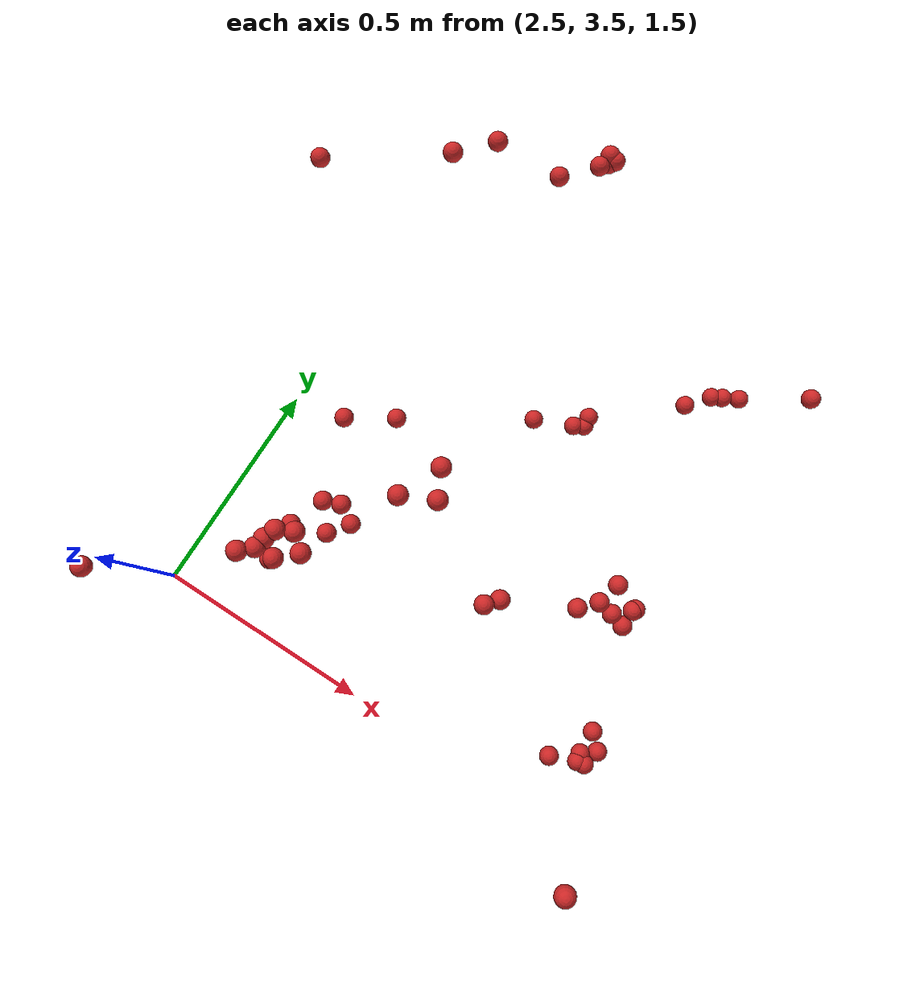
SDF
<sdf version="1.4">
 <model name="fruit_population">
  <static>true</static>
  <link name="fruit_15">
   <pose>2.684700486082706 3.7460056384429303 1.62779059801938 0 0 0</pose>
   <collision name="fruit_collision_15"><geometry><sphere><radius>0.022</radius></sphere></geometry></collision>
   <visual name="visual">
    <geometry><sphere><radius>0.022</radius></sphere></geometry>
    <material><script><name>Gazebo/Red</name></script></material>
   </visual>
   <inertial>
    <mass>0.05</mass>
    <inertia>
     <ixx>9.679999999999999e-06</ixx>
     <ixy>0.0</ixy>
     <ixz>0.0</ixz>
     <iyy>9.679999999999999e-06</iyy>
     <iyz>0.0</iyz>
     <izz>9.679999999999999e-06</izz>
    </inertia>
   </inertial>
   <sensor name="fruit_contact_15" type="contact">
    <plugin name="contact_plugin_15" filename="libcontact_plugin.so"/>
    <contact><collision>fruit_collision_15</collision><topic>fruit_contact_topic_15</topic></contact>
   </sensor>
  </link>
  <link name="fruit_21">
   <pose>2.6426882024266636 4.012076981934623 1.5983981191072676 0 0 0</pose>
   <collision name="fruit_collision_21"><geometry><sphere><radius>0.022</radius></sphere></geometry></collision>
   <visual name="visual">
    <geometry><sphere><radius>0.022</radius></sphere></geometry>
    <material><script><name>Gazebo/Red</name></script></material>
   </visual>
   <inertial>
    <mass>0.05</mass>
    <inertia>
     <ixx>9.679999999999999e-06</ixx>
     <ixy>0.0</ixy>
     <ixz>0.0</ixz>
     <iyy>9.679999999999999e-06</iyy>
     <iyz>0.0</iyz>
     <izz>9.679999999999999e-06</izz>
    </inertia>
   </inertial>
   <sensor name="fruit_contact_21" type="contact">
    <plugin name="contact_plugin_21" filename="libcontact_plugin.so"/>
    <contact><collision>fruit_collision_21</collision><topic>fruit_contact_topic_21</topic></contact>
   </sensor>
  </link>
  <link name="fruit_43">
   <pose>3.4422763458970818 3.627155309442718 1.5002836933342558 0 0 0</pose>
   <collision name="fruit_collision_43"><geometry><sphere><radius>0.022</radius></sphere></geometry></collision>
   <visual name="visual">
    <geometry><sphere><radius>0.022</radius></sphere></geometry>
    <material><script><name>Gazebo/Red</name></script></material>
   </visual>
   <inertial>
    <mass>0.05</mass>
    <inertia>
     <ixx>9.679999999999999e-06</ixx>
     <ixy>0.0</ixy>
     <ixz>0.0</ixz>
     <iyy>9.679999999999999e-06</iyy>
     <iyz>0.0</iyz>
     <izz>9.679999999999999e-06</izz>
    </inertia>
   </inertial>
   <sensor name="fruit_contact_43" type="contact">
    <plugin name="contact_plugin_43" filename="libcontact_plugin.so"/>
    <contact><collision>fruit_collision_43</collision><topic>fruit_contact_topic_43</topic></contact>
   </sensor>
  </link>
  <link name="fruit_44">
   <pose>3.3127597535592153 3.930853291404094 1.6302194774062004 0 0 0</pose>
   <collision name="fruit_collision_44"><geometry><sphere><radius>0.022</radius></sphere></geometry></collision>
   <visual name="visual">
    <geometry><sphere><radius>0.022</radius></sphere></geometry>
    <material><script><name>Gazebo/Red</name></script></material>
   </visual>
   <inertial>
    <mass>0.05</mass>
    <inertia>
     <ixx>9.679999999999999e-06</ixx>
     <ixy>0.0</ixy>
     <ixz>0.0</ixz>
     <iyy>9.679999999999999e-06</iyy>
     <iyz>0.0</iyz>
     <izz>9.679999999999999e-06</izz>
    </inertia>
   </inertial>
   <sensor name="fruit_contact_44" type="contact">
    <plugin name="contact_plugin_44" filename="libcontact_plugin.so"/>
    <contact><collision>fruit_collision_44</collision><topic>fruit_contact_topic_44</topic></contact>
   </sensor>
  </link>
  <link name="fruit_47">
   <pose>2.6683056746981966 3.6419394973025425 1.832749809143632 0 0 0</pose>
   <collision name="fruit_collision_47"><geometry><sphere><radius>0.022</radius></sphere></geometry></collision>
   <visual name="visual">
    <geometry><sphere><radius>0.022</radius></sphere></geometry>
    <material><script><name>Gazebo/Red</name></script></material>
   </visual>
   <inertial>
    <mass>0.05</mass>
    <inertia>
     <ixx>9.679999999999999e-06</ixx>
     <ixy>0.0</ixy>
     <ixz>0.0</ixz>
     <iyy>9.679999999999999e-06</iyy>
     <iyz>0.0</iyz>
     <izz>9.679999999999999e-06</izz>
    </inertia>
   </inertial>
   <sensor name="fruit_contact_47" type="contact">
    <plugin name="contact_plugin_47" filename="libcontact_plugin.so"/>
    <contact><collision>fruit_collision_47</collision><topic>fruit_contact_topic_47</topic></contact>
   </sensor>
  </link>
  <link name="fruit_50">
   <pose>3.5105878102218986 4.620496890735398 1.6069139017562128 0 0 0</pose>
   <collision name="fruit_collision_50"><geometry><sphere><radius>0.022</radius></sphere></geometry></collision>
   <visual name="visual">
    <geometry><sphere><radius>0.022</radius></sphere></geometry>
    <material><script><name>Gazebo/Red</name></script></material>
   </visual>
   <inertial>
    <mass>0.05</mass>
    <inertia>
     <ixx>9.679999999999999e-06</ixx>
     <ixy>0.0</ixy>
     <ixz>0.0</ixz>
     <iyy>9.679999999999999e-06</iyy>
     <iyz>0.0</iyz>
     <izz>9.679999999999999e-06</izz>
    </inertia>
   </inertial>
   <sensor name="fruit_contact_50" type="contact">
    <plugin name="contact_plugin_50" filename="libcontact_plugin.so"/>
    <contact><collision>fruit_collision_50</collision><topic>fruit_contact_topic_50</topic></contact>
   </sensor>
  </link>
  <link name="fruit_75">
   <pose>3.2842879284935744 4.4904516196715445 1.4915559141953179 0 0 0</pose>
   <collision name="fruit_collision_75"><geometry><sphere><radius>0.022</radius></sphere></geometry></collision>
   <visual name="visual">
    <geometry><sphere><radius>0.022</radius></sphere></geometry>
    <material><script><name>Gazebo/Red</name></script></material>
   </visual>
   <inertial>
    <mass>0.05</mass>
    <inertia>
     <ixx>9.679999999999999e-06</ixx>
     <ixy>0.0</ixy>
     <ixz>0.0</ixz>
     <iyy>9.679999999999999e-06</iyy>
     <iyz>0.0</iyz>
     <izz>9.679999999999999e-06</izz>
    </inertia>
   </inertial>
   <sensor name="fruit_contact_75" type="contact">
    <plugin name="contact_plugin_75" filename="libcontact_plugin.so"/>
    <contact><collision>fruit_collision_75</collision><topic>fruit_contact_topic_75</topic></contact>
   </sensor>
  </link>
  <link name="fruit_80">
   <pose>3.1386647307013 3.8247371496569156 1.6898906540431777 0 0 0</pose>
   <collision name="fruit_collision_80"><geometry><sphere><radius>0.022</radius></sphere></geometry></collision>
   <visual name="visual">
    <geometry><sphere><radius>0.022</radius></sphere></geometry>
    <material><script><name>Gazebo/Red</name></script></material>
   </visual>
   <inertial>
    <mass>0.05</mass>
    <inertia>
     <ixx>9.679999999999999e-06</ixx>
     <ixy>0.0</ixy>
     <ixz>0.0</ixz>
     <iyy>9.679999999999999e-06</iyy>
     <iyz>0.0</iyz>
     <izz>9.679999999999999e-06</izz>
    </inertia>
   </inertial>
   <sensor name="fruit_contact_80" type="contact">
    <plugin name="contact_plugin_80" filename="libcontact_plugin.so"/>
    <contact><collision>fruit_collision_80</collision><topic>fruit_contact_topic_80</topic></contact>
   </sensor>
  </link>
  <link name="fruit_136">
   <pose>2.7664947405878357 4.716859959303448 1.714235839433986 0 0 0</pose>
   <collision name="fruit_collision_136"><geometry><sphere><radius>0.022</radius></sphere></geometry></collision>
   <visual name="visual">
    <geometry><sphere><radius>0.022</radius></sphere></geometry>
    <material><script><name>Gazebo/Red</name></script></material>
   </visual>
   <inertial>
    <mass>0.05</mass>
    <inertia>
     <ixx>9.679999999999999e-06</ixx>
     <ixy>0.0</ixy>
     <ixz>0.0</ixz>
     <iyy>9.679999999999999e-06</iyy>
     <iyz>0.0</iyz>
     <izz>9.679999999999999e-06</izz>
    </inertia>
   </inertial>
   <sensor name="fruit_contact_136" type="contact">
    <plugin name="contact_plugin_136" filename="libcontact_plugin.so"/>
    <contact><collision>fruit_collision_136</collision><topic>fruit_contact_topic_136</topic></contact>
   </sensor>
  </link>
  <link name="fruit_137">
   <pose>2.5583551137048253 4.602494880934882 1.794303913689672 0 0 0</pose>
   <collision name="fruit_collision_137"><geometry><sphere><radius>0.022</radius></sphere></geometry></collision>
   <visual name="visual">
    <geometry><sphere><radius>0.022</radius></sphere></geometry>
    <material><script><name>Gazebo/Red</name></script></material>
   </visual>
   <inertial>
    <mass>0.05</mass>
    <inertia>
     <ixx>9.679999999999999e-06</ixx>
     <ixy>0.0</ixy>
     <ixz>0.0</ixz>
     <iyy>9.679999999999999e-06</iyy>
     <iyz>0.0</iyz>
     <izz>9.679999999999999e-06</izz>
    </inertia>
   </inertial>
   <sensor name="fruit_contact_137" type="contact">
    <plugin name="contact_plugin_137" filename="libcontact_plugin.so"/>
    <contact><collision>fruit_collision_137</collision><topic>fruit_contact_topic_137</topic></contact>
   </sensor>
  </link>
  <link name="fruit_141">
   <pose>3.0007218334241164 4.262807806177342 1.5055755651497003 0 0 0</pose>
   <collision name="fruit_collision_141"><geometry><sphere><radius>0.022</radius></sphere></geometry></collision>
   <visual name="visual">
    <geometry><sphere><radius>0.022</radius></sphere></geometry>
    <material><script><name>Gazebo/Red</name></script></material>
   </visual>
   <inertial>
    <mass>0.05</mass>
    <inertia>
     <ixx>9.679999999999999e-06</ixx>
     <ixy>0.0</ixy>
     <ixz>0.0</ixz>
     <iyy>9.679999999999999e-06</iyy>
     <iyz>0.0</iyz>
     <izz>9.679999999999999e-06</izz>
    </inertia>
   </inertial>
   <sensor name="fruit_contact_141" type="contact">
    <plugin name="contact_plugin_141" filename="libcontact_plugin.so"/>
    <contact><collision>fruit_collision_141</collision><topic>fruit_contact_topic_141</topic></contact>
   </sensor>
  </link>
  <link name="fruit_166">
   <pose>3.555759468914604 3.4469550946329575 1.8747539516512357 0 0 0</pose>
   <collision name="fruit_collision_166"><geometry><sphere><radius>0.022</radius></sphere></geometry></collision>
   <visual name="visual">
    <geometry><sphere><radius>0.022</radius></sphere></geometry>
    <material><script><name>Gazebo/Red</name></script></material>
   </visual>
   <inertial>
    <mass>0.05</mass>
    <inertia>
     <ixx>9.679999999999999e-06</ixx>
     <ixy>0.0</ixy>
     <ixz>0.0</ixz>
     <iyy>9.679999999999999e-06</iyy>
     <iyz>0.0</iyz>
     <izz>9.679999999999999e-06</izz>
    </inertia>
   </inertial>
   <sensor name="fruit_contact_166" type="contact">
    <plugin name="contact_plugin_166" filename="libcontact_plugin.so"/>
    <contact><collision>fruit_collision_166</collision><topic>fruit_contact_topic_166</topic></contact>
   </sensor>
  </link>
  <link name="fruit_171">
   <pose>2.8784160547381705 3.9081772478142116 1.8449582738218961 0 0 0</pose>
   <collision name="fruit_collision_171"><geometry><sphere><radius>0.022</radius></sphere></geometry></collision>
   <visual name="visual">
    <geometry><sphere><radius>0.022</radius></sphere></geometry>
    <material><script><name>Gazebo/Red</name></script></material>
   </visual>
   <inertial>
    <mass>0.05</mass>
    <inertia>
     <ixx>9.679999999999999e-06</ixx>
     <ixy>0.0</ixy>
     <ixz>0.0</ixz>
     <iyy>9.679999999999999e-06</iyy>
     <iyz>0.0</iyz>
     <izz>9.679999999999999e-06</izz>
    </inertia>
   </inertial>
   <sensor name="fruit_contact_171" type="contact">
    <plugin name="contact_plugin_171" filename="libcontact_plugin.so"/>
    <contact><collision>fruit_collision_171</collision><topic>fruit_contact_topic_171</topic></contact>
   </sensor>
  </link>
  <link name="fruit_181">
   <pose>2.7422370828820224 4.076666960688857 1.588921861759868 0 0 0</pose>
   <collision name="fruit_collision_181"><geometry><sphere><radius>0.022</radius></sphere></geometry></collision>
   <visual name="visual">
    <geometry><sphere><radius>0.022</radius></sphere></geometry>
    <material><script><name>Gazebo/Red</name></script></material>
   </visual>
   <inertial>
    <mass>0.05</mass>
    <inertia>
     <ixx>9.679999999999999e-06</ixx>
     <ixy>0.0</ixy>
     <ixz>0.0</ixz>
     <iyy>9.679999999999999e-06</iyy>
     <iyz>0.0</iyz>
     <izz>9.679999999999999e-06</izz>
    </inertia>
   </inertial>
   <sensor name="fruit_contact_181" type="contact">
    <plugin name="contact_plugin_181" filename="libcontact_plugin.so"/>
    <contact><collision>fruit_collision_181</collision><topic>fruit_contact_topic_181</topic></contact>
   </sensor>
  </link>
  <link name="fruit_199">
   <pose>3.108699302939429 4.317048655893899 1.4901322961685157 0 0 0</pose>
   <collision name="fruit_collision_199"><geometry><sphere><radius>0.022</radius></sphere></geometry></collision>
   <visual name="visual">
    <geometry><sphere><radius>0.022</radius></sphere></geometry>
    <material><script><name>Gazebo/Red</name></script></material>
   </visual>
   <inertial>
    <mass>0.05</mass>
    <inertia>
     <ixx>9.679999999999999e-06</ixx>
     <ixy>0.0</ixy>
     <ixz>0.0</ixz>
     <iyy>9.679999999999999e-06</iyy>
     <iyz>0.0</iyz>
     <izz>9.679999999999999e-06</izz>
    </inertia>
   </inertial>
   <sensor name="fruit_contact_199" type="contact">
    <plugin name="contact_plugin_199" filename="libcontact_plugin.so"/>
    <contact><collision>fruit_collision_199</collision><topic>fruit_contact_topic_199</topic></contact>
   </sensor>
  </link>
  <link name="fruit_204">
   <pose>2.850888760159417 4.823444945213385 1.6997783463972473 0 0 0</pose>
   <collision name="fruit_collision_204"><geometry><sphere><radius>0.022</radius></sphere></geometry></collision>
   <visual name="visual">
    <geometry><sphere><radius>0.022</radius></sphere></geometry>
    <material><script><name>Gazebo/Red</name></script></material>
   </visual>
   <inertial>
    <mass>0.05</mass>
    <inertia>
     <ixx>9.679999999999999e-06</ixx>
     <ixy>0.0</ixy>
     <ixz>0.0</ixz>
     <iyy>9.679999999999999e-06</iyy>
     <iyz>0.0</iyz>
     <izz>9.679999999999999e-06</izz>
    </inertia>
   </inertial>
   <sensor name="fruit_contact_204" type="contact">
    <plugin name="contact_plugin_204" filename="libcontact_plugin.so"/>
    <contact><collision>fruit_collision_204</collision><topic>fruit_contact_topic_204</topic></contact>
   </sensor>
  </link>
  <link name="fruit_248">
   <pose>2.4208774943743827 3.4470377214882517 1.8153905746440862 0 0 0</pose>
   <collision name="fruit_collision_248"><geometry><sphere><radius>0.022</radius></sphere></geometry></collision>
   <visual name="visual">
    <geometry><sphere><radius>0.022</radius></sphere></geometry>
    <material><script><name>Gazebo/Red</name></script></material>
   </visual>
   <inertial>
    <mass>0.05</mass>
    <inertia>
     <ixx>9.679999999999999e-06</ixx>
     <ixy>0.0</ixy>
     <ixz>0.0</ixz>
     <iyy>9.679999999999999e-06</iyy>
     <iyz>0.0</iyz>
     <izz>9.679999999999999e-06</izz>
    </inertia>
   </inertial>
   <sensor name="fruit_contact_248" type="contact">
    <plugin name="contact_plugin_248" filename="libcontact_plugin.so"/>
    <contact><collision>fruit_collision_248</collision><topic>fruit_contact_topic_248</topic></contact>
   </sensor>
  </link>
  <link name="fruit_261">
   <pose>3.531611880714284 3.6931982443342632 1.4831939067409312 0 0 0</pose>
   <collision name="fruit_collision_261"><geometry><sphere><radius>0.022</radius></sphere></geometry></collision>
   <visual name="visual">
    <geometry><sphere><radius>0.022</radius></sphere></geometry>
    <material><script><name>Gazebo/Red</name></script></material>
   </visual>
   <inertial>
    <mass>0.05</mass>
    <inertia>
     <ixx>9.679999999999999e-06</ixx>
     <ixy>0.0</ixy>
     <ixz>0.0</ixz>
     <iyy>9.679999999999999e-06</iyy>
     <iyz>0.0</iyz>
     <izz>9.679999999999999e-06</izz>
    </inertia>
   </inertial>
   <sensor name="fruit_contact_261" type="contact">
    <plugin name="contact_plugin_261" filename="libcontact_plugin.so"/>
    <contact><collision>fruit_collision_261</collision><topic>fruit_contact_topic_261</topic></contact>
   </sensor>
  </link>
  <link name="fruit_281">
   <pose>3.327355619915623 4.543613167165196 1.4844218999214036 0 0 0</pose>
   <collision name="fruit_collision_281"><geometry><sphere><radius>0.022</radius></sphere></geometry></collision>
   <visual name="visual">
    <geometry><sphere><radius>0.022</radius></sphere></geometry>
    <material><script><name>Gazebo/Red</name></script></material>
   </visual>
   <inertial>
    <mass>0.05</mass>
    <inertia>
     <ixx>9.679999999999999e-06</ixx>
     <ixy>0.0</ixy>
     <ixz>0.0</ixz>
     <iyy>9.679999999999999e-06</iyy>
     <iyz>0.0</iyz>
     <izz>9.679999999999999e-06</izz>
    </inertia>
   </inertial>
   <sensor name="fruit_contact_281" type="contact">
    <plugin name="contact_plugin_281" filename="libcontact_plugin.so"/>
    <contact><collision>fruit_collision_281</collision><topic>fruit_contact_topic_281</topic></contact>
   </sensor>
  </link>
  <link name="fruit_289">
   <pose>2.7070709323792452 3.717952881031565 1.8261554194883682 0 0 0</pose>
   <collision name="fruit_collision_289"><geometry><sphere><radius>0.022</radius></sphere></geometry></collision>
   <visual name="visual">
    <geometry><sphere><radius>0.022</radius></sphere></geometry>
    <material><script><name>Gazebo/Red</name></script></material>
   </visual>
   <inertial>
    <mass>0.05</mass>
    <inertia>
     <ixx>9.679999999999999e-06</ixx>
     <ixy>0.0</ixy>
     <ixz>0.0</ixz>
     <iyy>9.679999999999999e-06</iyy>
     <iyz>0.0</iyz>
     <izz>9.679999999999999e-06</izz>
    </inertia>
   </inertial>
   <sensor name="fruit_contact_289" type="contact">
    <plugin name="contact_plugin_289" filename="libcontact_plugin.so"/>
    <contact><collision>fruit_collision_289</collision><topic>fruit_contact_topic_289</topic></contact>
   </sensor>
  </link>
  <link name="fruit_296">
   <pose>2.7517379172723704 3.842443297633261 1.616795114210433 0 0 0</pose>
   <collision name="fruit_collision_296"><geometry><sphere><radius>0.022</radius></sphere></geometry></collision>
   <visual name="visual">
    <geometry><sphere><radius>0.022</radius></sphere></geometry>
    <material><script><name>Gazebo/Red</name></script></material>
   </visual>
   <inertial>
    <mass>0.05</mass>
    <inertia>
     <ixx>9.679999999999999e-06</ixx>
     <ixy>0.0</ixy>
     <ixz>0.0</ixz>
     <iyy>9.679999999999999e-06</iyy>
     <iyz>0.0</iyz>
     <izz>9.679999999999999e-06</izz>
    </inertia>
   </inertial>
   <sensor name="fruit_contact_296" type="contact">
    <plugin name="contact_plugin_296" filename="libcontact_plugin.so"/>
    <contact><collision>fruit_collision_296</collision><topic>fruit_contact_topic_296</topic></contact>
   </sensor>
  </link>
  <link name="fruit_326">
   <pose>2.2985711231989066 4.458415930150559 1.7320172107417309 0 0 0</pose>
   <collision name="fruit_collision_326"><geometry><sphere><radius>0.022</radius></sphere></geometry></collision>
   <visual name="visual">
    <geometry><sphere><radius>0.022</radius></sphere></geometry>
    <material><script><name>Gazebo/Red</name></script></material>
   </visual>
   <inertial>
    <mass>0.05</mass>
    <inertia>
     <ixx>9.679999999999999e-06</ixx>
     <ixy>0.0</ixy>
     <ixz>0.0</ixz>
     <iyy>9.679999999999999e-06</iyy>
     <iyz>0.0</iyz>
     <izz>9.679999999999999e-06</izz>
    </inertia>
   </inertial>
   <sensor name="fruit_contact_326" type="contact">
    <plugin name="contact_plugin_326" filename="libcontact_plugin.so"/>
    <contact><collision>fruit_collision_326</collision><topic>fruit_contact_topic_326</topic></contact>
   </sensor>
  </link>
  <link name="fruit_357">
   <pose>2.7763109870408877 3.7067320593816464 1.8218846331652505 0 0 0</pose>
   <collision name="fruit_collision_357"><geometry><sphere><radius>0.022</radius></sphere></geometry></collision>
   <visual name="visual">
    <geometry><sphere><radius>0.022</radius></sphere></geometry>
    <material><script><name>Gazebo/Red</name></script></material>
   </visual>
   <inertial>
    <mass>0.05</mass>
    <inertia>
     <ixx>9.679999999999999e-06</ixx>
     <ixy>0.0</ixy>
     <ixz>0.0</ixz>
     <iyy>9.679999999999999e-06</iyy>
     <iyz>0.0</iyz>
     <izz>9.679999999999999e-06</izz>
    </inertia>
   </inertial>
   <sensor name="fruit_contact_357" type="contact">
    <plugin name="contact_plugin_357" filename="libcontact_plugin.so"/>
    <contact><collision>fruit_collision_357</collision><topic>fruit_contact_topic_357</topic></contact>
   </sensor>
  </link>
  <link name="fruit_362">
   <pose>3.500806279017428 3.669254007785413 1.4835565142099751 0 0 0</pose>
   <collision name="fruit_collision_362"><geometry><sphere><radius>0.022</radius></sphere></geometry></collision>
   <visual name="visual">
    <geometry><sphere><radius>0.022</radius></sphere></geometry>
    <material><script><name>Gazebo/Red</name></script></material>
   </visual>
   <inertial>
    <mass>0.05</mass>
    <inertia>
     <ixx>9.679999999999999e-06</ixx>
     <ixy>0.0</ixy>
     <ixz>0.0</ixz>
     <iyy>9.679999999999999e-06</iyy>
     <iyz>0.0</iyz>
     <izz>9.679999999999999e-06</izz>
    </inertia>
   </inertial>
   <sensor name="fruit_contact_362" type="contact">
    <plugin name="contact_plugin_362" filename="libcontact_plugin.so"/>
    <contact><collision>fruit_collision_362</collision><topic>fruit_contact_topic_362</topic></contact>
   </sensor>
  </link>
  <link name="fruit_381">
   <pose>3.383832134640436 3.9624654954433374 1.613573511229704 0 0 0</pose>
   <collision name="fruit_collision_381"><geometry><sphere><radius>0.022</radius></sphere></geometry></collision>
   <visual name="visual">
    <geometry><sphere><radius>0.022</radius></sphere></geometry>
    <material><script><name>Gazebo/Red</name></script></material>
   </visual>
   <inertial>
    <mass>0.05</mass>
    <inertia>
     <ixx>9.679999999999999e-06</ixx>
     <ixy>0.0</ixy>
     <ixz>0.0</ixz>
     <iyy>9.679999999999999e-06</iyy>
     <iyz>0.0</iyz>
     <izz>9.679999999999999e-06</izz>
    </inertia>
   </inertial>
   <sensor name="fruit_contact_381" type="contact">
    <plugin name="contact_plugin_381" filename="libcontact_plugin.so"/>
    <contact><collision>fruit_collision_381</collision><topic>fruit_contact_topic_381</topic></contact>
   </sensor>
  </link>
  <link name="fruit_394">
   <pose>2.7345478507946415 3.6685452120276656 1.8183298800271301 0 0 0</pose>
   <collision name="fruit_collision_394"><geometry><sphere><radius>0.022</radius></sphere></geometry></collision>
   <visual name="visual">
    <geometry><sphere><radius>0.022</radius></sphere></geometry>
    <material><script><name>Gazebo/Red</name></script></material>
   </visual>
   <inertial>
    <mass>0.05</mass>
    <inertia>
     <ixx>9.679999999999999e-06</ixx>
     <ixy>0.0</ixy>
     <ixz>0.0</ixz>
     <iyy>9.679999999999999e-06</iyy>
     <iyz>0.0</iyz>
     <izz>9.679999999999999e-06</izz>
    </inertia>
   </inertial>
   <sensor name="fruit_contact_394" type="contact">
    <plugin name="contact_plugin_394" filename="libcontact_plugin.so"/>
    <contact><collision>fruit_collision_394</collision><topic>fruit_contact_topic_394</topic></contact>
   </sensor>
  </link>
  <link name="fruit_405">
   <pose>3.519980939248851 3.6539647077151267 1.4884149667893747 0 0 0</pose>
   <collision name="fruit_collision_405"><geometry><sphere><radius>0.022</radius></sphere></geometry></collision>
   <visual name="visual">
    <geometry><sphere><radius>0.022</radius></sphere></geometry>
    <material><script><name>Gazebo/Red</name></script></material>
   </visual>
   <inertial>
    <mass>0.05</mass>
    <inertia>
     <ixx>9.679999999999999e-06</ixx>
     <ixy>0.0</ixy>
     <ixz>0.0</ixz>
     <iyy>9.679999999999999e-06</iyy>
     <iyz>0.0</iyz>
     <izz>9.679999999999999e-06</izz>
    </inertia>
   </inertial>
   <sensor name="fruit_contact_405" type="contact">
    <plugin name="contact_plugin_405" filename="libcontact_plugin.so"/>
    <contact><collision>fruit_collision_405</collision><topic>fruit_contact_topic_405</topic></contact>
   </sensor>
  </link>
  <link name="fruit_423">
   <pose>3.3474612594133646 3.9686123833212843 1.620557475001109 0 0 0</pose>
   <collision name="fruit_collision_423"><geometry><sphere><radius>0.022</radius></sphere></geometry></collision>
   <visual name="visual">
    <geometry><sphere><radius>0.022</radius></sphere></geometry>
    <material><script><name>Gazebo/Red</name></script></material>
   </visual>
   <inertial>
    <mass>0.05</mass>
    <inertia>
     <ixx>9.679999999999999e-06</ixx>
     <ixy>0.0</ixy>
     <ixz>0.0</ixz>
     <iyy>9.679999999999999e-06</iyy>
     <iyz>0.0</iyz>
     <izz>9.679999999999999e-06</izz>
    </inertia>
   </inertial>
   <sensor name="fruit_contact_423" type="contact">
    <plugin name="contact_plugin_423" filename="libcontact_plugin.so"/>
    <contact><collision>fruit_collision_423</collision><topic>fruit_contact_topic_423</topic></contact>
   </sensor>
  </link>
  <link name="fruit_460">
   <pose>3.3854365691494324 4.575088356234398 1.4853804533541703 0 0 0</pose>
   <collision name="fruit_collision_460"><geometry><sphere><radius>0.022</radius></sphere></geometry></collision>
   <visual name="visual">
    <geometry><sphere><radius>0.022</radius></sphere></geometry>
    <material><script><name>Gazebo/Red</name></script></material>
   </visual>
   <inertial>
    <mass>0.05</mass>
    <inertia>
     <ixx>9.679999999999999e-06</ixx>
     <ixy>0.0</ixy>
     <ixz>0.0</ixz>
     <iyy>9.679999999999999e-06</iyy>
     <iyz>0.0</iyz>
     <izz>9.679999999999999e-06</izz>
    </inertia>
   </inertial>
   <sensor name="fruit_contact_460" type="contact">
    <plugin name="contact_plugin_460" filename="libcontact_plugin.so"/>
    <contact><collision>fruit_collision_460</collision><topic>fruit_contact_topic_460</topic></contact>
   </sensor>
  </link>
  <link name="fruit_492">
   <pose>2.834500342361133 4.826072725139218 1.7057972776000094 0 0 0</pose>
   <collision name="fruit_collision_492"><geometry><sphere><radius>0.022</radius></sphere></geometry></collision>
   <visual name="visual">
    <geometry><sphere><radius>0.022</radius></sphere></geometry>
    <material><script><name>Gazebo/Red</name></script></material>
   </visual>
   <inertial>
    <mass>0.05</mass>
    <inertia>
     <ixx>9.679999999999999e-06</ixx>
     <ixy>0.0</ixy>
     <ixz>0.0</ixz>
     <iyy>9.679999999999999e-06</iyy>
     <iyz>0.0</iyz>
     <izz>9.679999999999999e-06</izz>
    </inertia>
   </inertial>
   <sensor name="fruit_contact_492" type="contact">
    <plugin name="contact_plugin_492" filename="libcontact_plugin.so"/>
    <contact><collision>fruit_collision_492</collision><topic>fruit_contact_topic_492</topic></contact>
   </sensor>
  </link>
  <link name="fruit_495">
   <pose>2.6933447204369574 3.6673655057403423 1.8254606680792147 0 0 0</pose>
   <collision name="fruit_collision_495"><geometry><sphere><radius>0.022</radius></sphere></geometry></collision>
   <visual name="visual">
    <geometry><sphere><radius>0.022</radius></sphere></geometry>
    <material><script><name>Gazebo/Red</name></script></material>
   </visual>
   <inertial>
    <mass>0.05</mass>
    <inertia>
     <ixx>9.679999999999999e-06</ixx>
     <ixy>0.0</ixy>
     <ixz>0.0</ixz>
     <iyy>9.679999999999999e-06</iyy>
     <iyz>0.0</iyz>
     <izz>9.679999999999999e-06</izz>
    </inertia>
   </inertial>
   <sensor name="fruit_contact_495" type="contact">
    <plugin name="contact_plugin_495" filename="libcontact_plugin.so"/>
    <contact><collision>fruit_collision_495</collision><topic>fruit_contact_topic_495</topic></contact>
   </sensor>
  </link>
  <link name="fruit_504">
   <pose>2.7286802775678725 3.665164562456968 1.8116610759817078 0 0 0</pose>
   <collision name="fruit_collision_504"><geometry><sphere><radius>0.022</radius></sphere></geometry></collision>
   <visual name="visual">
    <geometry><sphere><radius>0.022</radius></sphere></geometry>
    <material><script><name>Gazebo/Red</name></script></material>
   </visual>
   <inertial>
    <mass>0.05</mass>
    <inertia>
     <ixx>9.679999999999999e-06</ixx>
     <ixy>0.0</ixy>
     <ixz>0.0</ixz>
     <iyy>9.679999999999999e-06</iyy>
     <iyz>0.0</iyz>
     <izz>9.679999999999999e-06</izz>
    </inertia>
   </inertial>
   <sensor name="fruit_contact_504" type="contact">
    <plugin name="contact_plugin_504" filename="libcontact_plugin.so"/>
    <contact><collision>fruit_collision_504</collision><topic>fruit_contact_topic_504</topic></contact>
   </sensor>
  </link>
  <link name="fruit_509">
   <pose>3.502835169443685 3.6509437722608737 1.4893671657009346 0 0 0</pose>
   <collision name="fruit_collision_509"><geometry><sphere><radius>0.022</radius></sphere></geometry></collision>
   <visual name="visual">
    <geometry><sphere><radius>0.022</radius></sphere></geometry>
    <material><script><name>Gazebo/Red</name></script></material>
   </visual>
   <inertial>
    <mass>0.05</mass>
    <inertia>
     <ixx>9.679999999999999e-06</ixx>
     <ixy>0.0</ixy>
     <ixz>0.0</ixz>
     <iyy>9.679999999999999e-06</iyy>
     <iyz>0.0</iyz>
     <izz>9.679999999999999e-06</izz>
    </inertia>
   </inertial>
   <sensor name="fruit_contact_509" type="contact">
    <plugin name="contact_plugin_509" filename="libcontact_plugin.so"/>
    <contact><collision>fruit_collision_509</collision><topic>fruit_contact_topic_509</topic></contact>
   </sensor>
  </link>
  <link name="fruit_513">
   <pose>2.622056723848383 4.683899897529711 1.7779384289510853 0 0 0</pose>
   <collision name="fruit_collision_513"><geometry><sphere><radius>0.022</radius></sphere></geometry></collision>
   <visual name="visual">
    <geometry><sphere><radius>0.022</radius></sphere></geometry>
    <material><script><name>Gazebo/Red</name></script></material>
   </visual>
   <inertial>
    <mass>0.05</mass>
    <inertia>
     <ixx>9.679999999999999e-06</ixx>
     <ixy>0.0</ixy>
     <ixz>0.0</ixz>
     <iyy>9.679999999999999e-06</iyy>
     <iyz>0.0</iyz>
     <izz>9.679999999999999e-06</izz>
    </inertia>
   </inertial>
   <sensor name="fruit_contact_513" type="contact">
    <plugin name="contact_plugin_513" filename="libcontact_plugin.so"/>
    <contact><collision>fruit_collision_513</collision><topic>fruit_contact_topic_513</topic></contact>
   </sensor>
  </link>
  <link name="fruit_527">
   <pose>2.827959271304852 4.790673174153796 1.706630165649444 0 0 0</pose>
   <collision name="fruit_collision_527"><geometry><sphere><radius>0.022</radius></sphere></geometry></collision>
   <visual name="visual">
    <geometry><sphere><radius>0.022</radius></sphere></geometry>
    <material><script><name>Gazebo/Red</name></script></material>
   </visual>
   <inertial>
    <mass>0.05</mass>
    <inertia>
     <ixx>9.679999999999999e-06</ixx>
     <ixy>0.0</ixy>
     <ixz>0.0</ixz>
     <iyy>9.679999999999999e-06</iyy>
     <iyz>0.0</iyz>
     <izz>9.679999999999999e-06</izz>
    </inertia>
   </inertial>
   <sensor name="fruit_contact_527" type="contact">
    <plugin name="contact_plugin_527" filename="libcontact_plugin.so"/>
    <contact><collision>fruit_collision_527</collision><topic>fruit_contact_topic_527</topic></contact>
   </sensor>
  </link>
  <link name="fruit_529">
   <pose>2.740760675304179 3.7360462783744612 1.8175414826445 0 0 0</pose>
   <collision name="fruit_collision_529"><geometry><sphere><radius>0.022</radius></sphere></geometry></collision>
   <visual name="visual">
    <geometry><sphere><radius>0.022</radius></sphere></geometry>
    <material><script><name>Gazebo/Red</name></script></material>
   </visual>
   <inertial>
    <mass>0.05</mass>
    <inertia>
     <ixx>9.679999999999999e-06</ixx>
     <ixy>0.0</ixy>
     <ixz>0.0</ixz>
     <iyy>9.679999999999999e-06</iyy>
     <iyz>0.0</iyz>
     <izz>9.679999999999999e-06</izz>
    </inertia>
   </inertial>
   <sensor name="fruit_contact_529" type="contact">
    <plugin name="contact_plugin_529" filename="libcontact_plugin.so"/>
    <contact><collision>fruit_collision_529</collision><topic>fruit_contact_topic_529</topic></contact>
   </sensor>
  </link>
  <link name="fruit_532">
   <pose>3.1617226147820157 3.853204337793363 1.6711186854210225 0 0 0</pose>
   <collision name="fruit_collision_532"><geometry><sphere><radius>0.022</radius></sphere></geometry></collision>
   <visual name="visual">
    <geometry><sphere><radius>0.022</radius></sphere></geometry>
    <material><script><name>Gazebo/Red</name></script></material>
   </visual>
   <inertial>
    <mass>0.05</mass>
    <inertia>
     <ixx>9.679999999999999e-06</ixx>
     <ixy>0.0</ixy>
     <ixz>0.0</ixz>
     <iyy>9.679999999999999e-06</iyy>
     <iyz>0.0</iyz>
     <izz>9.679999999999999e-06</izz>
    </inertia>
   </inertial>
   <sensor name="fruit_contact_532" type="contact">
    <plugin name="contact_plugin_532" filename="libcontact_plugin.so"/>
    <contact><collision>fruit_collision_532</collision><topic>fruit_contact_topic_532</topic></contact>
   </sensor>
  </link>
  <link name="fruit_569">
   <pose>2.759883578566501 3.7720176589828287 1.614453881736552 0 0 0</pose>
   <collision name="fruit_collision_569"><geometry><sphere><radius>0.022</radius></sphere></geometry></collision>
   <visual name="visual">
    <geometry><sphere><radius>0.022</radius></sphere></geometry>
    <material><script><name>Gazebo/Red</name></script></material>
   </visual>
   <inertial>
    <mass>0.05</mass>
    <inertia>
     <ixx>9.679999999999999e-06</ixx>
     <ixy>0.0</ixy>
     <ixz>0.0</ixz>
     <iyy>9.679999999999999e-06</iyy>
     <iyz>0.0</iyz>
     <izz>9.679999999999999e-06</izz>
    </inertia>
   </inertial>
   <sensor name="fruit_contact_569" type="contact">
    <plugin name="contact_plugin_569" filename="libcontact_plugin.so"/>
    <contact><collision>fruit_collision_569</collision><topic>fruit_contact_topic_569</topic></contact>
   </sensor>
  </link>
  <link name="fruit_605">
   <pose>3.1069652444505937 4.340220220597751 1.4952595835118823 0 0 0</pose>
   <collision name="fruit_collision_605"><geometry><sphere><radius>0.022</radius></sphere></geometry></collision>
   <visual name="visual">
    <geometry><sphere><radius>0.022</radius></sphere></geometry>
    <material><script><name>Gazebo/Red</name></script></material>
   </visual>
   <inertial>
    <mass>0.05</mass>
    <inertia>
     <ixx>9.679999999999999e-06</ixx>
     <ixy>0.0</ixy>
     <ixz>0.0</ixz>
     <iyy>9.679999999999999e-06</iyy>
     <iyz>0.0</iyz>
     <izz>9.679999999999999e-06</izz>
    </inertia>
   </inertial>
   <sensor name="fruit_contact_605" type="contact">
    <plugin name="contact_plugin_605" filename="libcontact_plugin.so"/>
    <contact><collision>fruit_collision_605</collision><topic>fruit_contact_topic_605</topic></contact>
   </sensor>
  </link>
  <link name="fruit_614">
   <pose>3.4222247505757357 3.998529851827002 1.611723455986654 0 0 0</pose>
   <collision name="fruit_collision_614"><geometry><sphere><radius>0.022</radius></sphere></geometry></collision>
   <visual name="visual">
    <geometry><sphere><radius>0.022</radius></sphere></geometry>
    <material><script><name>Gazebo/Red</name></script></material>
   </visual>
   <inertial>
    <mass>0.05</mass>
    <inertia>
     <ixx>9.679999999999999e-06</ixx>
     <ixy>0.0</ixy>
     <ixz>0.0</ixz>
     <iyy>9.679999999999999e-06</iyy>
     <iyz>0.0</iyz>
     <izz>9.679999999999999e-06</izz>
    </inertia>
   </inertial>
   <sensor name="fruit_contact_614" type="contact">
    <plugin name="contact_plugin_614" filename="libcontact_plugin.so"/>
    <contact><collision>fruit_collision_614</collision><topic>fruit_contact_topic_614</topic></contact>
   </sensor>
  </link>
  <link name="fruit_633">
   <pose>2.6972424745140002 3.6921883394086286 1.8212282024176039 0 0 0</pose>
   <collision name="fruit_collision_633"><geometry><sphere><radius>0.022</radius></sphere></geometry></collision>
   <visual name="visual">
    <geometry><sphere><radius>0.022</radius></sphere></geometry>
    <material><script><name>Gazebo/Red</name></script></material>
   </visual>
   <inertial>
    <mass>0.05</mass>
    <inertia>
     <ixx>9.679999999999999e-06</ixx>
     <ixy>0.0</ixy>
     <ixz>0.0</ixz>
     <iyy>9.679999999999999e-06</iyy>
     <iyz>0.0</iyz>
     <izz>9.679999999999999e-06</izz>
    </inertia>
   </inertial>
   <sensor name="fruit_contact_633" type="contact">
    <plugin name="contact_plugin_633" filename="libcontact_plugin.so"/>
    <contact><collision>fruit_collision_633</collision><topic>fruit_contact_topic_633</topic></contact>
   </sensor>
  </link>
  <link name="fruit_648">
   <pose>3.3615510228251457 4.022219090013099 1.6231478813115618 0 0 0</pose>
   <collision name="fruit_collision_648"><geometry><sphere><radius>0.022</radius></sphere></geometry></collision>
   <visual name="visual">
    <geometry><sphere><radius>0.022</radius></sphere></geometry>
    <material><script><name>Gazebo/Red</name></script></material>
   </visual>
   <inertial>
    <mass>0.05</mass>
    <inertia>
     <ixx>9.679999999999999e-06</ixx>
     <ixy>0.0</ixy>
     <ixz>0.0</ixz>
     <iyy>9.679999999999999e-06</iyy>
     <iyz>0.0</iyz>
     <izz>9.679999999999999e-06</izz>
    </inertia>
   </inertial>
   <sensor name="fruit_contact_648" type="contact">
    <plugin name="contact_plugin_648" filename="libcontact_plugin.so"/>
    <contact><collision>fruit_collision_648</collision><topic>fruit_contact_topic_648</topic></contact>
   </sensor>
  </link>
  <link name="fruit_668">
   <pose>2.793089273617219 3.8174653262642124 1.6095749573396507 0 0 0</pose>
   <collision name="fruit_collision_668"><geometry><sphere><radius>0.022</radius></sphere></geometry></collision>
   <visual name="visual">
    <geometry><sphere><radius>0.022</radius></sphere></geometry>
    <material><script><name>Gazebo/Red</name></script></material>
   </visual>
   <inertial>
    <mass>0.05</mass>
    <inertia>
     <ixx>9.679999999999999e-06</ixx>
     <ixy>0.0</ixy>
     <ixz>0.0</ixz>
     <iyy>9.679999999999999e-06</iyy>
     <iyz>0.0</iyz>
     <izz>9.679999999999999e-06</izz>
    </inertia>
   </inertial>
   <sensor name="fruit_contact_668" type="contact">
    <plugin name="contact_plugin_668" filename="libcontact_plugin.so"/>
    <contact><collision>fruit_collision_668</collision><topic>fruit_contact_topic_668</topic></contact>
   </sensor>
  </link>
  <link name="fruit_681">
   <pose>3.4185194106062498 3.992885675476994 1.6153281268661286 0 0 0</pose>
   <collision name="fruit_collision_681"><geometry><sphere><radius>0.022</radius></sphere></geometry></collision>
   <visual name="visual">
    <geometry><sphere><radius>0.022</radius></sphere></geometry>
    <material><script><name>Gazebo/Red</name></script></material>
   </visual>
   <inertial>
    <mass>0.05</mass>
    <inertia>
     <ixx>9.679999999999999e-06</ixx>
     <ixy>0.0</ixy>
     <ixz>0.0</ixz>
     <iyy>9.679999999999999e-06</iyy>
     <iyz>0.0</iyz>
     <izz>9.679999999999999e-06</izz>
    </inertia>
   </inertial>
   <sensor name="fruit_contact_681" type="contact">
    <plugin name="contact_plugin_681" filename="libcontact_plugin.so"/>
    <contact><collision>fruit_collision_681</collision><topic>fruit_contact_topic_681</topic></contact>
   </sensor>
  </link>
  <link name="fruit_691">
   <pose>2.949547264913931 3.9440983443068376 1.8330974599964116 0 0 0</pose>
   <collision name="fruit_collision_691"><geometry><sphere><radius>0.022</radius></sphere></geometry></collision>
   <visual name="visual">
    <geometry><sphere><radius>0.022</radius></sphere></geometry>
    <material><script><name>Gazebo/Red</name></script></material>
   </visual>
   <inertial>
    <mass>0.05</mass>
    <inertia>
     <ixx>9.679999999999999e-06</ixx>
     <ixy>0.0</ixy>
     <ixz>0.0</ixz>
     <iyy>9.679999999999999e-06</iyy>
     <iyz>0.0</iyz>
     <izz>9.679999999999999e-06</izz>
    </inertia>
   </inertial>
   <sensor name="fruit_contact_691" type="contact">
    <plugin name="contact_plugin_691" filename="libcontact_plugin.so"/>
    <contact><collision>fruit_collision_691</collision><topic>fruit_contact_topic_691</topic></contact>
   </sensor>
  </link>
  <link name="fruit_706">
   <pose>2.7135170844378975 3.8271258203618475 1.6201542165024112 0 0 0</pose>
   <collision name="fruit_collision_706"><geometry><sphere><radius>0.022</radius></sphere></geometry></collision>
   <visual name="visual">
    <geometry><sphere><radius>0.022</radius></sphere></geometry>
    <material><script><name>Gazebo/Red</name></script></material>
   </visual>
   <inertial>
    <mass>0.05</mass>
    <inertia>
     <ixx>9.679999999999999e-06</ixx>
     <ixy>0.0</ixy>
     <ixz>0.0</ixz>
     <iyy>9.679999999999999e-06</iyy>
     <iyz>0.0</iyz>
     <izz>9.679999999999999e-06</izz>
    </inertia>
   </inertial>
   <sensor name="fruit_contact_706" type="contact">
    <plugin name="contact_plugin_706" filename="libcontact_plugin.so"/>
    <contact><collision>fruit_collision_706</collision><topic>fruit_contact_topic_706</topic></contact>
   </sensor>
  </link>
  <link name="fruit_765">
   <pose>3.3503861679835425 4.5562586686630855 1.4849452726236971 0 0 0</pose>
   <collision name="fruit_collision_765"><geometry><sphere><radius>0.022</radius></sphere></geometry></collision>
   <visual name="visual">
    <geometry><sphere><radius>0.022</radius></sphere></geometry>
    <material><script><name>Gazebo/Red</name></script></material>
   </visual>
   <inertial>
    <mass>0.05</mass>
    <inertia>
     <ixx>9.679999999999999e-06</ixx>
     <ixy>0.0</ixy>
     <ixz>0.0</ixz>
     <iyy>9.679999999999999e-06</iyy>
     <iyz>0.0</iyz>
     <izz>9.679999999999999e-06</izz>
    </inertia>
   </inertial>
   <sensor name="fruit_contact_765" type="contact">
    <plugin name="contact_plugin_765" filename="libcontact_plugin.so"/>
    <contact><collision>fruit_collision_765</collision><topic>fruit_contact_topic_765</topic></contact>
   </sensor>
  </link>
  <link name="fruit_767">
   <pose>3.498541410260165 3.7255385096786724 1.490428748403288 0 0 0</pose>
   <collision name="fruit_collision_767"><geometry><sphere><radius>0.022</radius></sphere></geometry></collision>
   <visual name="visual">
    <geometry><sphere><radius>0.022</radius></sphere></geometry>
    <material><script><name>Gazebo/Red</name></script></material>
   </visual>
   <inertial>
    <mass>0.05</mass>
    <inertia>
     <ixx>9.679999999999999e-06</ixx>
     <ixy>0.0</ixy>
     <ixz>0.0</ixz>
     <iyy>9.679999999999999e-06</iyy>
     <iyz>0.0</iyz>
     <izz>9.679999999999999e-06</izz>
    </inertia>
   </inertial>
   <sensor name="fruit_contact_767" type="contact">
    <plugin name="contact_plugin_767" filename="libcontact_plugin.so"/>
    <contact><collision>fruit_collision_767</collision><topic>fruit_contact_topic_767</topic></contact>
   </sensor>
  </link>
  <link name="fruit_781">
   <pose>2.917978313831478 4.004914063098189 1.8259880309832357 0 0 0</pose>
   <collision name="fruit_collision_781"><geometry><sphere><radius>0.022</radius></sphere></geometry></collision>
   <visual name="visual">
    <geometry><sphere><radius>0.022</radius></sphere></geometry>
    <material><script><name>Gazebo/Red</name></script></material>
   </visual>
   <inertial>
    <mass>0.05</mass>
    <inertia>
     <ixx>9.679999999999999e-06</ixx>
     <ixy>0.0</ixy>
     <ixz>0.0</ixz>
     <iyy>9.679999999999999e-06</iyy>
     <iyz>0.0</iyz>
     <izz>9.679999999999999e-06</izz>
    </inertia>
   </inertial>
   <sensor name="fruit_contact_781" type="contact">
    <plugin name="contact_plugin_781" filename="libcontact_plugin.so"/>
    <contact><collision>fruit_collision_781</collision><topic>fruit_contact_topic_781</topic></contact>
   </sensor>
  </link>
  <link name="fruit_791">
   <pose>2.840594251960685 4.813653833403608 1.6926215378862557 0 0 0</pose>
   <collision name="fruit_collision_791"><geometry><sphere><radius>0.022</radius></sphere></geometry></collision>
   <visual name="visual">
    <geometry><sphere><radius>0.022</radius></sphere></geometry>
    <material><script><name>Gazebo/Red</name></script></material>
   </visual>
   <inertial>
    <mass>0.05</mass>
    <inertia>
     <ixx>9.679999999999999e-06</ixx>
     <ixy>0.0</ixy>
     <ixz>0.0</ixz>
     <iyy>9.679999999999999e-06</iyy>
     <iyz>0.0</iyz>
     <izz>9.679999999999999e-06</izz>
    </inertia>
   </inertial>
   <sensor name="fruit_contact_791" type="contact">
    <plugin name="contact_plugin_791" filename="libcontact_plugin.so"/>
    <contact><collision>fruit_collision_791</collision><topic>fruit_contact_topic_791</topic></contact>
   </sensor>
  </link>
  <link name="fruit_794">
   <pose>3.417106590900266 3.9533949236015875 1.6087279870934859 0 0 0</pose>
   <collision name="fruit_collision_794"><geometry><sphere><radius>0.022</radius></sphere></geometry></collision>
   <visual name="visual">
    <geometry><sphere><radius>0.022</radius></sphere></geometry>
    <material><script><name>Gazebo/Red</name></script></material>
   </visual>
   <inertial>
    <mass>0.05</mass>
    <inertia>
     <ixx>9.679999999999999e-06</ixx>
     <ixy>0.0</ixy>
     <ixz>0.0</ixz>
     <iyy>9.679999999999999e-06</iyy>
     <iyz>0.0</iyz>
     <izz>9.679999999999999e-06</izz>
    </inertia>
   </inertial>
   <sensor name="fruit_contact_794" type="contact">
    <plugin name="contact_plugin_794" filename="libcontact_plugin.so"/>
    <contact><collision>fruit_collision_794</collision><topic>fruit_contact_topic_794</topic></contact>
   </sensor>
  </link>
  <link name="fruit_815">
   <pose>3.0873129729493023 4.303207430145759 1.4939523873737475 0 0 0</pose>
   <collision name="fruit_collision_815"><geometry><sphere><radius>0.022</radius></sphere></geometry></collision>
   <visual name="visual">
    <geometry><sphere><radius>0.022</radius></sphere></geometry>
    <material><script><name>Gazebo/Red</name></script></material>
   </visual>
   <inertial>
    <mass>0.05</mass>
    <inertia>
     <ixx>9.679999999999999e-06</ixx>
     <ixy>0.0</ixy>
     <ixz>0.0</ixz>
     <iyy>9.679999999999999e-06</iyy>
     <iyz>0.0</iyz>
     <izz>9.679999999999999e-06</izz>
    </inertia>
   </inertial>
   <sensor name="fruit_contact_815" type="contact">
    <plugin name="contact_plugin_815" filename="libcontact_plugin.so"/>
    <contact><collision>fruit_collision_815</collision><topic>fruit_contact_topic_815</topic></contact>
   </sensor>
  </link>
 </model>
</sdf>
